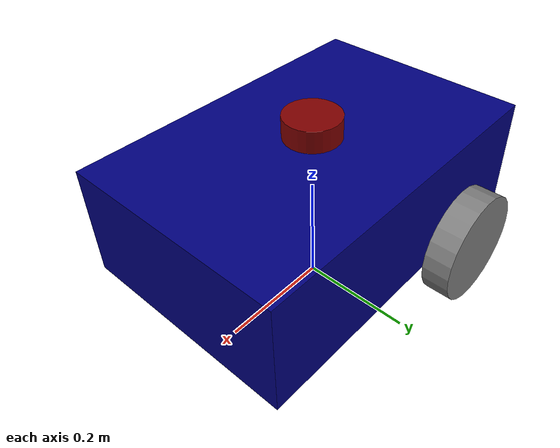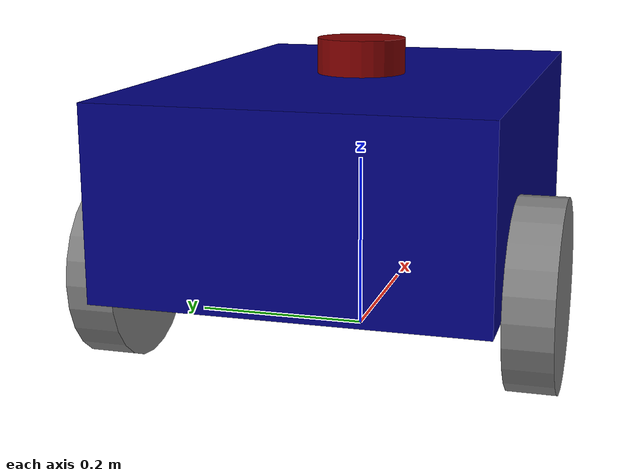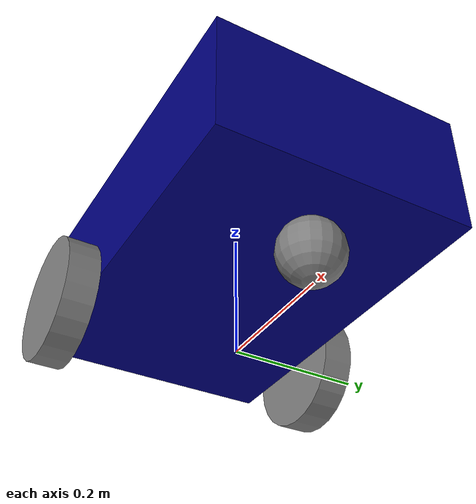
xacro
<?xml version = "1.0"?>

<robot name = "my_robot" xmlns:xacro = "http://www.ros.org/wiki/xacro">

    <xacro:include filename = "common_properties.xacro" />
    <xacro:include filename = "mobile_base.xacro" />
    <xacro:include filename = "mobile_base_gazebo.xacro" />
    <xacro:include filename = "lidar.xacro" />

</robot>

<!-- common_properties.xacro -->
<robot xmlns:xacro = "http://www.ros.org/wiki/xacro">

    <material name = "green">
        <color rgba = "0 0.5 0 1" />
    </material>

    <material name = "orange">
        <color rgba = "1 0.5 0 1" />
    </material>

    <material name = "yellow">
        <color rgba = "1 1 0 1" />
    </material>

    <material name = "blue">
        <color rgba = "0 0 0.5 1" />
    </material>

    <material name = "red">
        <color rgba = "0.5 0 0 1" />
    </material>

    <material name = "grey">
        <color rgba = "0.5 0.5 0.5 1" />
    </material>

    <xacro:macro name = "box_inertia" params = "m l w h xyz rpy">
        <inertial>
            <origin xyz = "${xyz}" rpy = "${rpy}" />
            <mass value = "${m}" />
            <inertia ixx = "${(m/12) * (h*h + l*l)}" ixy = "0" ixz = "0"
                     iyy = "${(m/12) * (w*w + h*h)}" iyz = "0"
                     izz = "${(m/12) * (w*w + l*l)}" />
        </inertial>
    </xacro:macro>

    <xacro:macro name = "wheel_inertia" params = "m r l xyz rpy">
        <inertial>
            <origin xyz = "${xyz}" rpy = "${rpy}" />
            <mass value = "${m}" />
            <inertia ixx = "${(m/12) * (3*r*r + l*l)}" ixy = "0" ixz = "0"
                     iyy = "${(m/12) * (3*r*r + l*l)}" iyz = "0"
                     izz = "${(m/2) * (r*r)}" />
        </inertial>
    </xacro:macro>

    <xacro:macro name = "caster_wheel_inertia" params = "m r xyz rpy">
        <inertial>
            <origin xyz = "${xyz}" rpy = "${rpy}" />
            <mass value = "${m}" />
            <inertia ixx = "${(2/5) * (m*r*r)}" ixy = "0" ixz = "0"
                     iyy = "${(2/5) * (m*r*r)}" iyz = "0"
                     izz = "${(2/5) * (m*r*r)}" />
        </inertial>
    </xacro:macro>

</robot>

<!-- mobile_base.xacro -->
<robot xmlns:xacro = "http://www.ros.org/wiki/xacro">

    <xacro:property name = "base_length" value = "0.6" />
    <xacro:property name = "base_width" value = "0.4" />
    <xacro:property name = "base_height" value = "0.2" />
    <xacro:property name = "wheel_radius" value = "0.1" />
    <xacro:property name = "wheel_length" value = "0.05" />

    <link name = "base_footprint" />

    <link name = "base_link">
        <visual>
            <geometry>
                <box size = "${base_length} ${base_width} ${base_height}" />
            </geometry>
            <origin xyz = "0 0 ${base_height / 2.0}" rpy = "0 0 0" />
            <material name = "blue" />
        </visual>
        <collision>
            <geometry>
                <box size = "${base_length} ${base_width} ${base_height}" />
            </geometry>
            <origin xyz = "0 0 ${base_height / 2.0}" rpy = "0 0 0" />
        </collision>
        <xacro:box_inertia m = "5.0" l = "${2*base_length}" w = "${2*base_width}" h = "${2*base_height}"
                           xyz = "0 0 ${base_height / 2.0}" rpy = "0 0 0" />
    </link>

    <xacro:macro name = "wheel_link" params = "prefix">
        <link name = "${prefix}_wheel_link">
        <visual>
            <geometry>
                <cylinder radius = "${wheel_radius}" length = "${wheel_length}" />
            </geometry>
            <origin xyz = "0 0 0" rpy = "${pi / 2.0} 0 0" />
            <material name = "grey" />
        </visual>
        <collision>
            <geometry>
                <cylinder radius = "${wheel_radius}" length = "${wheel_length}" />
            </geometry>
            <origin xyz = "0 0 0" rpy = "${pi / 2.0} 0 0" />
        </collision>
        <xacro:wheel_inertia m = "1.0" r = "${2*wheel_radius}" l = "${2*wheel_length}"
                             xyz = "0 0 0" rpy = "${pi / 2.0} 0 0" />
        </link>
    </xacro:macro>

    <xacro:wheel_link prefix = "right" />
    <xacro:wheel_link prefix = "left" />

    <link name = "caster_wheel_link">
        <visual>
            <geometry>
                <sphere radius = "${wheel_radius / 2.0}" />
            </geometry>
            <origin xyz = "0 0 0" rpy = "0 0 0" />
            <material name = "grey" />
        </visual>
        <collision>
            <geometry>
                <sphere radius = "${wheel_radius / 2.0}" />
            </geometry>
            <origin xyz = "0 0 0" rpy = "0 0 0" />
        </collision>
        <xacro:caster_wheel_inertia m = "0.5" r = "${2*wheel_radius / 2.0}"
                                    xyz = "0 0 0" rpy = "0 0 0" />
    </link>

    <joint name = "base_joint" type = "fixed">
        <parent link = "base_footprint" />
        <child link = "base_link" />
        <origin xyz = "0 0 ${wheel_radius}" rpy = "0 0 0" />
    </joint>

    <joint name = "base_right_wheel_joint" type = "continuous">
        <parent link = "base_link" />
        <child link = "right_wheel_link" />
        <origin xyz = "${-base_length / 4.0} ${-(base_width + wheel_length) / 2.0} 0" rpy = "0 0 0" />
        <axis xyz = "0 1 0" />
    </joint>

    <joint name = "base_left_wheel_joint" type = "continuous">
        <parent link = "base_link" />
        <child link = "left_wheel_link" />
        <origin xyz = "${-base_length / 4.0} ${(base_width + wheel_length) / 2.0} 0" rpy = "0 0 0" />
        <axis xyz = "0 1 0" />
    </joint>

    <joint name = "base_caster_wheel_joint" type = "fixed">
        <parent link = "base_link" />
        <child link = "caster_wheel_link" />
        <origin xyz = "${base_height} 0 ${-wheel_radius / 2.0}"  rpy = "0 0 0" />
    </joint>

</robot>

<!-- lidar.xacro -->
<robot xmlns:xacro = "http://www.ros.org/wiki/xacro">

    <xacro:property name = "lidar_radius" value = "0.05" />
    <xacro:property name = "lidar_length" value = "0.04" />

    <link name = "laser_link">
        <visual>
            <geometry>
                <cylinder radius = "0.05" length = "0.04"/>
            </geometry>
            <material name = "red"/>
        </visual>
    </link>
    <collision>
        <visual>
            <geometry>
                <cylinder radius = "0.05" length = "0.04"/>
            </geometry>
        </visual>
    </collision>
    <xacro:wheel_inertia m = "0.1" r = "${lidar_radius}" l = "${lidar_length}"
                         xyz = "0 0 0" rpy = "0 0 0" />

    <joint name = "base_lidar_joint" type = "fixed">
        <parent link = "base_link" />
        <child link = "laser_link" />
        <origin xyz = "0 0 ${base_height + (lidar_length / 2.0)}" rpy = "0 0 0" />
    </joint>

    <gazebo reference="laser_link">
        <material>Gazebo/Red</material>

        <sensor name="laser" type="ray">
            <pose> 0 0 0 0 0 0 </pose>
            <visualize>true</visualize>
            <update_rate>10</update_rate>
            <ray>
                <scan>
                    <horizontal>
                        <samples>360</samples>
                        <min_angle>-3.14</min_angle>
                        <max_angle>3.14</max_angle>
                    </horizontal>
                </scan>
                <range>
                    <min>0.3</min>
                    <max>5.0</max>
                </range>
            </ray>
            <plugin name="laser_controller" filename="libgazebo_ros_ray_sensor.so">
                <ros>
                    <argument>~/out:=scan</argument>
                </ros>
                <output_type>sensor_msgs/LaserScan</output_type>
                <frame_name>laser_link</frame_name>
            </plugin>
        </sensor>
    </gazebo>

</robot>
